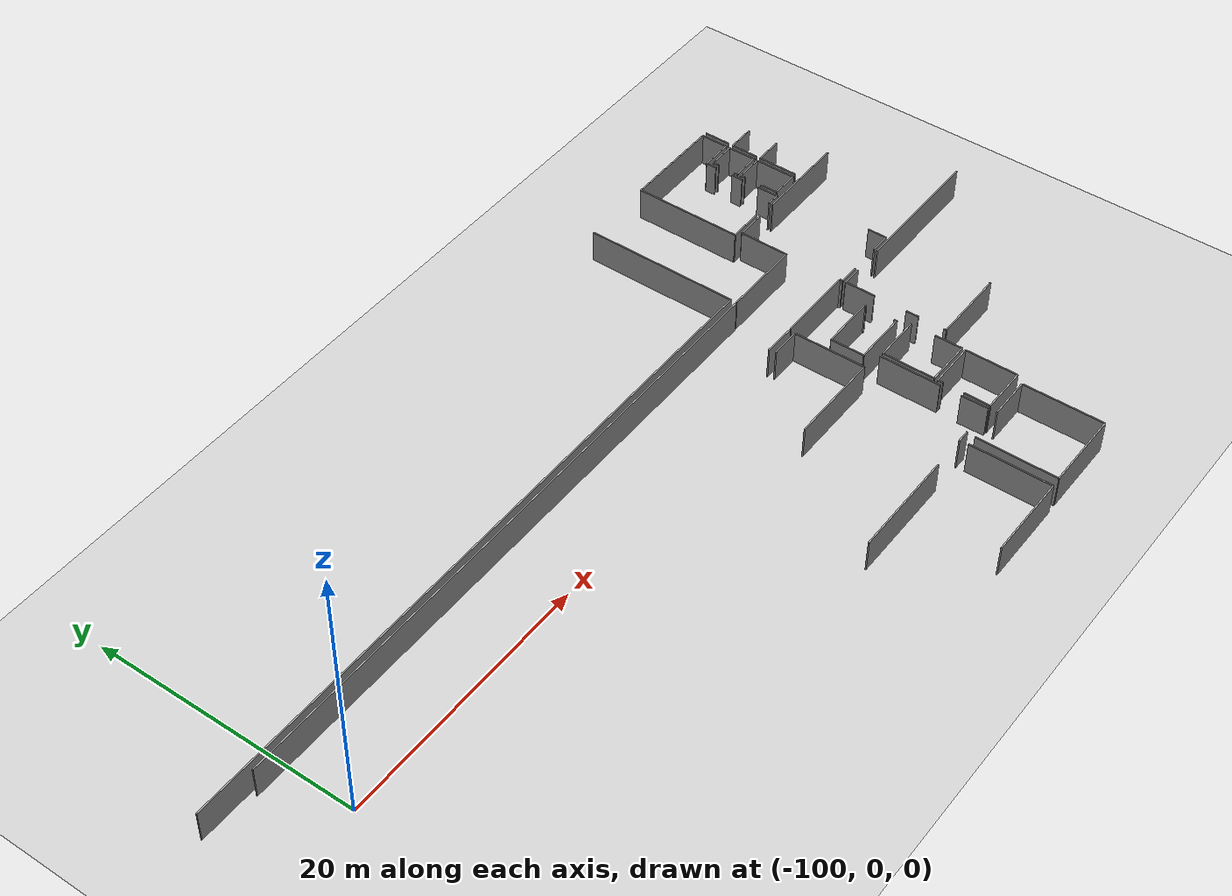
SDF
<sdf version="1.6">
 <world name="default">
  <model name="ground_plane">
   <static>1</static>
   <link name="link">
    <collision name="collision">
     <geometry><plane><normal>0 0 1</normal><size>100 100</size></plane></geometry>
     <surface><friction><ode><mu>100</mu><mu2>50</mu2></ode></friction></surface>
    </collision>
    <visual name="visual">
     <cast_shadows>0</cast_shadows>
     <geometry><plane><normal>0 0 1</normal><size>100 100</size></plane></geometry>
     <material>
      <script><uri>file://media/materials/scripts/gazebo.material</uri><name>Gazebo/Grey</name></script>
     </material>
    </visual>
   </link>
  </model>
  <model name="50037764_PLAN1">
   <static>1</static>
   <link name="Wall_7">
    <collision name="Wall_7_Collision">
     <geometry><box><size>52.3181147999 0.1 2.5</size></box></geometry>
     <pose>26.1590574 0 1.25 0 0 0</pose>
    </collision>
    <visual name="Wall_7_Visual">
     <pose>26.1590574 0 1.25 0 0 0</pose>
     <geometry><box><size>52.3181147999 0.1 2.5</size></box></geometry>
     <material>
      <script><uri>file://media/materials/scripts/gazebo.material</uri><name>Gazebo/Grey</name></script>
      <ambient>1 1 1 1</ambient>
     </material>
    </visual>
    <pose>80.802531903 -15.2174996187 0 0 0 3.14159265359</pose>
   </link>
   <link name="Wall_12">
    <collision name="Wall_12_Collision">
     <geometry><box><size>11.5403012483 0.1 2.5</size></box></geometry>
     <pose>5.77015062417 0 1.25 0 0 0</pose>
    </collision>
    <visual name="Wall_12_Visual">
     <pose>5.77015062417 0 1.25 0 0 0</pose>
     <geometry><box><size>11.5403012483 0.1 2.5</size></box></geometry>
     <material>
      <script><uri>file://media/materials/scripts/gazebo.material</uri><name>Gazebo/Grey</name></script>
      <ambient>1 1 1 1</ambient>
     </material>
    </visual>
    <pose>80.7877878896 -3.67720778891 0 0 0 -1.56951871565</pose>
   </link>
   <link name="Wall_103">
    <collision name="Wall_103_Collision">
     <geometry><box><size>48.118867253 0.1 2.5</size></box></geometry>
     <pose>24.0594336265 0 1.25 0 0 0</pose>
    </collision>
    <visual name="Wall_103_Visual">
     <pose>24.0594336265 0 1.25 0 0 0</pose>
     <geometry><box><size>48.118867253 0.1 2.5</size></box></geometry>
     <material>
      <script><uri>file://media/materials/scripts/gazebo.material</uri><name>Gazebo/Grey</name></script>
      <ambient>1 1 1 1</ambient>
     </material>
    </visual>
    <pose>80.6886471097 -15.6869439219 0 0 0 3.14159265359</pose>
   </link>
   <link name="Wall_114">
    <collision name="Wall_114_Collision">
     <geometry><box><size>2.43379115076 0.1 2.5</size></box></geometry>
     <pose>1.21689557538 0 1.25 0 0 0</pose>
    </collision>
    <visual name="Wall_114_Visual">
     <pose>1.21689557538 0 1.25 0 0 0</pose>
     <geometry><box><size>2.43379115076 0.1 2.5</size></box></geometry>
     <material>
      <script><uri>file://media/materials/scripts/gazebo.material</uri><name>Gazebo/Grey</name></script>
      <ambient>1 1 1 1</ambient>
     </material>
    </visual>
    <pose>78.2553764808 -19.9963139966 0 0 0 -0.0206823826757</pose>
   </link>
   <link name="Wall_115">
    <collision name="Wall_115_Collision">
     <geometry><box><size>0.989119934923 0.1 2.5</size></box></geometry>
     <pose>0.494559967461 0 1.25 0 0 0</pose>
    </collision>
    <visual name="Wall_115_Visual">
     <pose>0.494559967461 0 1.25 0 0 0</pose>
     <geometry><box><size>0.989119934923 0.1 2.5</size></box></geometry>
     <material>
      <script><uri>file://media/materials/scripts/gazebo.material</uri><name>Gazebo/Grey</name></script>
      <ambient>1 1 1 1</ambient>
     </material>
    </visual>
    <pose>79.5414103411 -34.3661345264 0 0 0 3.14159265359</pose>
   </link>
   <link name="Wall_116">
    <collision name="Wall_116_Collision">
     <geometry><box><size>8.24037826021 0.1 2.5</size></box></geometry>
     <pose>4.1201891301 0 1.25 0 0 0</pose>
    </collision>
    <visual name="Wall_116_Visual">
     <pose>4.1201891301 0 1.25 0 0 0</pose>
     <geometry><box><size>8.24037826021 0.1 2.5</size></box></geometry>
     <material>
      <script><uri>file://media/materials/scripts/gazebo.material</uri><name>Gazebo/Grey</name></script>
      <ambient>1 1 1 1</ambient>
     </material>
    </visual>
    <pose>75.9997966343 -34.3661345264 0 0 0 3.14159265359</pose>
   </link>
   <link name="Wall_130">
    <collision name="Wall_130_Collision">
     <geometry><box><size>4.60445370888 0.1 2.5</size></box></geometry>
     <pose>2.30222685444 0 1.25 0 0 0</pose>
    </collision>
    <visual name="Wall_130_Visual">
     <pose>2.30222685444 0 1.25 0 0 0</pose>
     <geometry><box><size>4.60445370888 0.1 2.5</size></box></geometry>
     <material>
      <script><uri>file://media/materials/scripts/gazebo.material</uri><name>Gazebo/Grey</name></script>
      <ambient>1 1 1 1</ambient>
     </material>
    </visual>
    <pose>82.1686410087 -26.1923585337 0 0 0 -1.57079632679</pose>
   </link>
   <link name="Wall_131">
    <collision name="Wall_131_Collision">
     <geometry><box><size>1.99791415344 0.1 2.5</size></box></geometry>
     <pose>0.998957076719 0 1.25 0 0 0</pose>
    </collision>
    <visual name="Wall_131_Visual">
     <pose>0.998957076719 0 1.25 0 0 0</pose>
     <geometry><box><size>1.99791415344 0.1 2.5</size></box></geometry>
     <material>
      <script><uri>file://media/materials/scripts/gazebo.material</uri><name>Gazebo/Grey</name></script>
      <ambient>1 1 1 1</ambient>
     </material>
    </visual>
    <pose>82.1686410087 -32.368829122 0 0 0 -1.54610998474</pose>
   </link>
   <link name="Wall_146">
    <collision name="Wall_146_Collision">
     <geometry><box><size>6.47109664955 0.1 2.5</size></box></geometry>
     <pose>3.23554832478 0 1.25 0 0 0</pose>
    </collision>
    <visual name="Wall_146_Visual">
     <pose>3.23554832478 0 1.25 0 0 0</pose>
     <geometry><box><size>6.47109664955 0.1 2.5</size></box></geometry>
     <material>
      <script><uri>file://media/materials/scripts/gazebo.material</uri><name>Gazebo/Grey</name></script>
      <ambient>1 1 1 1</ambient>
     </material>
    </visual>
    <pose>78.6918501195 -41.0899130612 0 0 0 3.14159265359</pose>
   </link>
   <link name="Wall_149">
    <collision name="Wall_149_Collision">
     <geometry><box><size>6.10890438347 0.1 2.5</size></box></geometry>
     <pose>3.05445219173 0 1.25 0 0 0</pose>
    </collision>
    <visual name="Wall_149_Visual">
     <pose>3.05445219173 0 1.25 0 0 0</pose>
     <geometry><box><size>6.10890438347 0.1 2.5</size></box></geometry>
     <material>
      <script><uri>file://media/materials/scripts/gazebo.material</uri><name>Gazebo/Grey</name></script>
      <ambient>1 1 1 1</ambient>
     </material>
    </visual>
    <pose>78.6664294067 -34.981061569 0 0 0 -1.56663505915</pose>
   </link>
   <link name="Wall_150">
    <collision name="Wall_150_Collision">
     <geometry><box><size>6.04352026031 0.1 2.5</size></box></geometry>
     <pose>3.02176013015 0 1.25 0 0 0</pose>
    </collision>
    <visual name="Wall_150_Visual">
     <pose>3.02176013015 0 1.25 0 0 0</pose>
     <geometry><box><size>6.04352026031 0.1 2.5</size></box></geometry>
     <material>
      <script><uri>file://media/materials/scripts/gazebo.material</uri><name>Gazebo/Grey</name></script>
      <ambient>1 1 1 1</ambient>
     </material>
    </visual>
    <pose>85.4969749352 -41.0596624129 0 0 0 3.14159265359</pose>
   </link>
   <link name="Wall_151">
    <collision name="Wall_151_Collision">
     <geometry><box><size>6.05953530937 0.1 2.5</size></box></geometry>
     <pose>3.02976765469 0 1.25 0 0 0</pose>
    </collision>
    <visual name="Wall_151_Visual">
     <pose>3.02976765469 0 1.25 0 0 0</pose>
     <geometry><box><size>6.05953530937 0.1 2.5</size></box></geometry>
     <material>
      <script><uri>file://media/materials/scripts/gazebo.material</uri><name>Gazebo/Grey</name></script>
      <ambient>1 1 1 1</ambient>
     </material>
    </visual>
    <pose>79.4534546749 -41.0596624129 0 0 0 1.57079632679</pose>
   </link>
   <link name="Wall_152">
    <collision name="Wall_152_Collision">
     <geometry><box><size>3.23427728914 0.1 2.5</size></box></geometry>
     <pose>1.61713864457 0 1.25 0 0 0</pose>
    </collision>
    <visual name="Wall_152_Visual">
     <pose>1.61713864457 0 1.25 0 0 0</pose>
     <geometry><box><size>3.23427728914 0.1 2.5</size></box></geometry>
     <material>
      <script><uri>file://media/materials/scripts/gazebo.material</uri><name>Gazebo/Grey</name></script>
      <ambient>1 1 1 1</ambient>
     </material>
    </visual>
    <pose>82.226854441 -35.0001271036 0 0 0 0.0</pose>
   </link>
   <link name="Wall_153">
    <collision name="Wall_153_Collision">
     <geometry><box><size>6.05964131784 0.1 2.5</size></box></geometry>
     <pose>3.02982065892 0 1.25 0 0 0</pose>
    </collision>
    <visual name="Wall_153_Visual">
     <pose>3.02982065892 0 1.25 0 0 0</pose>
     <geometry><box><size>6.05964131784 0.1 2.5</size></box></geometry>
     <material>
      <script><uri>file://media/materials/scripts/gazebo.material</uri><name>Gazebo/Grey</name></script>
      <ambient>1 1 1 1</ambient>
     </material>
    </visual>
    <pose>85.4611317301 -35.0001271036 0 0 0 -1.56488122189</pose>
   </link>
   <link name="Wall_154">
    <collision name="Wall_154_Collision">
     <geometry><box><size>3.55406985612 0.1 2.5</size></box></geometry>
     <pose>1.77703492806 0 1.25 0 0 0</pose>
    </collision>
    <visual name="Wall_154_Visual">
     <pose>1.77703492806 0 1.25 0 0 0</pose>
     <geometry><box><size>3.55406985612 0.1 2.5</size></box></geometry>
     <material>
      <script><uri>file://media/materials/scripts/gazebo.material</uri><name>Gazebo/Grey</name></script>
      <ambient>1 1 1 1</ambient>
     </material>
    </visual>
    <pose>86.0297930754 -34.3569830698 0 0 0 3.14159265359</pose>
   </link>
   <link name="Wall_155">
    <collision name="Wall_155_Collision">
     <geometry><box><size>1.96629213483 0.1 2.5</size></box></geometry>
     <pose>0.983146067416 0 1.25 0 0 0</pose>
    </collision>
    <visual name="Wall_155_Visual">
     <pose>0.983146067416 0 1.25 0 0 0</pose>
     <geometry><box><size>1.96629213483 0.1 2.5</size></box></geometry>
     <material>
      <script><uri>file://media/materials/scripts/gazebo.material</uri><name>Gazebo/Grey</name></script>
      <ambient>1 1 1 1</ambient>
     </material>
    </visual>
    <pose>82.4757232193 -34.3569830698 0 0 0 1.57079632679</pose>
   </link>
   <link name="Wall_156">
    <collision name="Wall_156_Collision">
     <geometry><box><size>0.406985611877 0.1 2.5</size></box></geometry>
     <pose>0.203492805938 0 1.25 0 0 0</pose>
    </collision>
    <visual name="Wall_156_Visual">
     <pose>0.203492805938 0 1.25 0 0 0</pose>
     <geometry><box><size>0.406985611877 0.1 2.5</size></box></geometry>
     <material>
      <script><uri>file://media/materials/scripts/gazebo.material</uri><name>Gazebo/Grey</name></script>
      <ambient>1 1 1 1</ambient>
     </material>
    </visual>
    <pose>82.4757232193 -30.827317098 0 0 0 1.57079632679</pose>
   </link>
   <link name="Wall_157">
    <collision name="Wall_157_Collision">
     <geometry><box><size>3.54974833494 0.1 2.5</size></box></geometry>
     <pose>1.77487416747 0 1.25 0 0 0</pose>
    </collision>
    <visual name="Wall_157_Visual">
     <pose>1.77487416747 0 1.25 0 0 0</pose>
     <geometry><box><size>3.54974833494 0.1 2.5</size></box></geometry>
     <material>
      <script><uri>file://media/materials/scripts/gazebo.material</uri><name>Gazebo/Grey</name></script>
      <ambient>1 1 1 1</ambient>
     </material>
    </visual>
    <pose>82.4757232193 -30.4203314861 0 0 0 0.0</pose>
   </link>
   <link name="Wall_158">
    <collision name="Wall_158_Collision">
     <geometry><box><size>3.93665395572 0.1 2.5</size></box></geometry>
     <pose>1.96832697786 0 1.25 0 0 0</pose>
    </collision>
    <visual name="Wall_158_Visual">
     <pose>1.96832697786 0 1.25 0 0 0</pose>
     <geometry><box><size>3.93665395572 0.1 2.5</size></box></geometry>
     <material>
      <script><uri>file://media/materials/scripts/gazebo.material</uri><name>Gazebo/Grey</name></script>
      <ambient>1 1 1 1</ambient>
     </material>
    </visual>
    <pose>86.0254715542 -30.4203314861 0 0 0 -1.56969856151</pose>
   </link>
   <link name="Wall_159">
    <collision name="Wall_159_Collision">
     <geometry><box><size>7.15338858102 0.1 2.5</size></box></geometry>
     <pose>3.57669429051 0 1.25 0 0 0</pose>
    </collision>
    <visual name="Wall_159_Visual">
     <pose>3.57669429051 0 1.25 0 0 0</pose>
     <geometry><box><size>7.15338858102 0.1 2.5</size></box></geometry>
     <material>
      <script><uri>file://media/materials/scripts/gazebo.material</uri><name>Gazebo/Grey</name></script>
      <ambient>1 1 1 1</ambient>
     </material>
    </visual>
    <pose>80.6759367533 -25.9109512431 0 0 0 3.14159265359</pose>
   </link>
   <link name="Wall_162">
    <collision name="Wall_162_Collision">
     <geometry><box><size>2.26727337435 0.1 2.5</size></box></geometry>
     <pose>1.13363668717 0 1.25 0 0 0</pose>
    </collision>
    <visual name="Wall_162_Visual">
     <pose>1.13363668717 0 1.25 0 0 0</pose>
     <geometry><box><size>2.26727337435 0.1 2.5</size></box></geometry>
     <material>
      <script><uri>file://media/materials/scripts/gazebo.material</uri><name>Gazebo/Grey</name></script>
      <ambient>1 1 1 1</ambient>
     </material>
    </visual>
    <pose>78.3606182317 -20.4932889318 0 0 0 0.0</pose>
   </link>
   <link name="Wall_163">
    <collision name="Wall_163_Collision">
     <geometry><box><size>5.41787534509 0.1 2.5</size></box></geometry>
     <pose>2.70893767254 0 1.25 0 0 0</pose>
    </collision>
    <visual name="Wall_163_Visual">
     <pose>2.70893767254 0 1.25 0 0 0</pose>
     <geometry><box><size>5.41787534509 0.1 2.5</size></box></geometry>
     <material>
      <script><uri>file://media/materials/scripts/gazebo.material</uri><name>Gazebo/Grey</name></script>
      <ambient>1 1 1 1</ambient>
     </material>
    </visual>
    <pose>80.6278916061 -20.4932889318 0 0 0 -1.56192831602</pose>
   </link>
   <link name="Wall_167">
    <collision name="Wall_167_Collision">
     <geometry><box><size>1.43347399461 0.1 2.5</size></box></geometry>
     <pose>0.716736997305 0 1.25 0 0 0</pose>
    </collision>
    <visual name="Wall_167_Visual">
     <pose>0.716736997305 0 1.25 0 0 0</pose>
     <geometry><box><size>1.43347399461 0.1 2.5</size></box></geometry>
     <material>
      <script><uri>file://media/materials/scripts/gazebo.material</uri><name>Gazebo/Grey</name></script>
      <ambient>1 1 1 1</ambient>
     </material>
    </visual>
    <pose>92.485128883 -18.8017947023 0 0 0 -1.57079632679</pose>
   </link>
   <link name="Wall_168">
    <collision name="Wall_168_Collision">
     <geometry><box><size>1.56718694392 0.1 2.5</size></box></geometry>
     <pose>0.783593471961 0 1.25 0 0 0</pose>
    </collision>
    <visual name="Wall_168_Visual">
     <pose>0.783593471961 0 1.25 0 0 0</pose>
     <geometry><box><size>1.56718694392 0.1 2.5</size></box></geometry>
     <material>
      <script><uri>file://media/materials/scripts/gazebo.material</uri><name>Gazebo/Grey</name></script>
      <ambient>1 1 1 1</ambient>
     </material>
    </visual>
    <pose>92.485128883 -20.2352686969 0 0 0 3.14159265359</pose>
   </link>
   <link name="Wall_169">
    <collision name="Wall_169_Collision">
     <geometry><box><size>1.61141898419 0.1 2.5</size></box></geometry>
     <pose>0.805709492094 0 1.25 0 0 0</pose>
    </collision>
    <visual name="Wall_169_Visual">
     <pose>0.805709492094 0 1.25 0 0 0</pose>
     <geometry><box><size>1.61141898419 0.1 2.5</size></box></geometry>
     <material>
      <script><uri>file://media/materials/scripts/gazebo.material</uri><name>Gazebo/Grey</name></script>
      <ambient>1 1 1 1</ambient>
     </material>
    </visual>
    <pose>88.5233107936 -20.2352686969 0 0 0 3.14159265359</pose>
   </link>
   <link name="Wall_170">
    <collision name="Wall_170_Collision">
     <geometry><box><size>0.215821851645 0.1 2.5</size></box></geometry>
     <pose>0.107910925822 0 1.25 0 0 0</pose>
    </collision>
    <visual name="Wall_170_Visual">
     <pose>0.107910925822 0 1.25 0 0 0</pose>
     <geometry><box><size>0.215821851645 0.1 2.5</size></box></geometry>
     <material>
      <script><uri>file://media/materials/scripts/gazebo.material</uri><name>Gazebo/Grey</name></script>
      <ambient>1 1 1 1</ambient>
     </material>
    </visual>
    <pose>86.9118918094 -20.2352686969 0 0 0 1.57079632679</pose>
   </link>
   <link name="Wall_171">
    <collision name="Wall_171_Collision">
     <geometry><box><size>6.10732624943 0.1 2.5</size></box></geometry>
     <pose>3.05366312471 0 1.25 0 0 0</pose>
    </collision>
    <visual name="Wall_171_Visual">
     <pose>3.05366312471 0 1.25 0 0 0</pose>
     <geometry><box><size>6.10732624943 0.1 2.5</size></box></geometry>
     <material>
      <script><uri>file://media/materials/scripts/gazebo.material</uri><name>Gazebo/Grey</name></script>
      <ambient>1 1 1 1</ambient>
     </material>
    </visual>
    <pose>86.9118918094 -20.0194468453 0 0 0 3.14159265359</pose>
   </link>
   <link name="Wall_172">
    <collision name="Wall_172_Collision">
     <geometry><box><size>6.09105699324 0.1 2.5</size></box></geometry>
     <pose>3.04552849662 0 1.25 0 0 0</pose>
    </collision>
    <visual name="Wall_172_Visual">
     <pose>3.04552849662 0 1.25 0 0 0</pose>
     <geometry><box><size>6.09105699324 0.1 2.5</size></box></geometry>
     <material>
      <script><uri>file://media/materials/scripts/gazebo.material</uri><name>Gazebo/Grey</name></script>
      <ambient>1 1 1 1</ambient>
     </material>
    </visual>
    <pose>80.80456556 -15.6702425136 0 0 0 0.0</pose>
   </link>
   <link name="Wall_173">
    <collision name="Wall_173_Collision">
     <geometry><box><size>3.69390919721 0.1 2.5</size></box></geometry>
     <pose>1.84695459861 0 1.25 0 0 0</pose>
    </collision>
    <visual name="Wall_173_Visual">
     <pose>1.84695459861 0 1.25 0 0 0</pose>
     <geometry><box><size>3.69390919721 0.1 2.5</size></box></geometry>
     <material>
      <script><uri>file://media/materials/scripts/gazebo.material</uri><name>Gazebo/Grey</name></script>
      <ambient>1 1 1 1</ambient>
     </material>
    </visual>
    <pose>86.8956225533 -15.6702425136 0 0 0 1.57079632679</pose>
   </link>
   <link name="Wall_174">
    <collision name="Wall_174_Collision">
     <geometry><box><size>2.19126544308 0.1 2.5</size></box></geometry>
     <pose>1.09563272154 0 1.25 0 0 0</pose>
    </collision>
    <visual name="Wall_174_Visual">
     <pose>1.09563272154 0 1.25 0 0 0</pose>
     <geometry><box><size>2.19126544308 0.1 2.5</size></box></geometry>
     <material>
      <script><uri>file://media/materials/scripts/gazebo.material</uri><name>Gazebo/Grey</name></script>
      <ambient>1 1 1 1</ambient>
     </material>
    </visual>
    <pose>86.8956225533 -11.9763333164 0 0 0 0.0</pose>
   </link>
   <link name="Wall_175">
    <collision name="Wall_175_Collision">
     <geometry><box><size>7.17652142966 0.1 2.5</size></box></geometry>
     <pose>3.58826071483 0 1.25 0 0 0</pose>
    </collision>
    <visual name="Wall_175_Visual">
     <pose>3.58826071483 0 1.25 0 0 0</pose>
     <geometry><box><size>7.17652142966 0.1 2.5</size></box></geometry>
     <material>
      <script><uri>file://media/materials/scripts/gazebo.material</uri><name>Gazebo/Grey</name></script>
      <ambient>1 1 1 1</ambient>
     </material>
    </visual>
    <pose>90.6741573034 -11.9763333164 0 0 0 0.0</pose>
   </link>
   <link name="Wall_178">
    <collision name="Wall_178_Collision">
     <geometry><box><size>0.989119934923 0.1 2.5</size></box></geometry>
     <pose>0.494559967461 0 1.25 0 0 0</pose>
    </collision>
    <visual name="Wall_178_Visual">
     <pose>0.494559967461 0 1.25 0 0 0</pose>
     <geometry><box><size>0.989119934923 0.1 2.5</size></box></geometry>
     <material>
      <script><uri>file://media/materials/scripts/gazebo.material</uri><name>Gazebo/Grey</name></script>
      <ambient>1 1 1 1</ambient>
     </material>
    </visual>
    <pose>91.68259698 -11.7032894402 0 0 0 3.14159265359</pose>
   </link>
   <link name="Wall_179">
    <collision name="Wall_179_Collision">
     <geometry><box><size>2.6485840663 0.1 2.5</size></box></geometry>
     <pose>1.32429203315 0 1.25 0 0 0</pose>
    </collision>
    <visual name="Wall_179_Visual">
     <pose>1.32429203315 0 1.25 0 0 0</pose>
     <geometry><box><size>2.6485840663 0.1 2.5</size></box></geometry>
     <material>
      <script><uri>file://media/materials/scripts/gazebo.material</uri><name>Gazebo/Grey</name></script>
      <ambient>1 1 1 1</ambient>
     </material>
    </visual>
    <pose>89.0917179318 -11.7032894402 0 0 0 3.14159265359</pose>
   </link>
   <link name="Wall_180">
    <collision name="Wall_180_Collision">
     <geometry><box><size>8.05157862626 0.1 2.5</size></box></geometry>
     <pose>4.02578931313 0 1.25 0 0 0</pose>
    </collision>
    <visual name="Wall_180_Visual">
     <pose>4.02578931313 0 1.25 0 0 0</pose>
     <geometry><box><size>8.05157862626 0.1 2.5</size></box></geometry>
     <material>
      <script><uri>file://media/materials/scripts/gazebo.material</uri><name>Gazebo/Grey</name></script>
      <ambient>1 1 1 1</ambient>
     </material>
    </visual>
    <pose>86.4431338655 -11.7032894402 0 0 0 1.57079632679</pose>
   </link>
   <link name="Wall_181">
    <collision name="Wall_181_Collision">
     <geometry><box><size>7.64095785246 0.1 2.5</size></box></geometry>
     <pose>3.82047892623 0 1.25 0 0 0</pose>
    </collision>
    <visual name="Wall_181_Visual">
     <pose>3.82047892623 0 1.25 0 0 0</pose>
     <geometry><box><size>7.64095785246 0.1 2.5</size></box></geometry>
     <material>
      <script><uri>file://media/materials/scripts/gazebo.material</uri><name>Gazebo/Grey</name></script>
      <ambient>1 1 1 1</ambient>
     </material>
    </visual>
    <pose>86.4431338655 -3.65171081397 0 0 0 0.0</pose>
   </link>
   <link name="Wall_182">
    <collision name="Wall_182_Collision">
     <geometry><box><size>2.03508058366 0.1 2.5</size></box></geometry>
     <pose>1.01754029183 0 1.25 0 0 0</pose>
    </collision>
    <visual name="Wall_182_Visual">
     <pose>1.01754029183 0 1.25 0 0 0</pose>
     <geometry><box><size>2.03508058366 0.1 2.5</size></box></geometry>
     <material>
      <script><uri>file://media/materials/scripts/gazebo.material</uri><name>Gazebo/Grey</name></script>
      <ambient>1 1 1 1</ambient>
     </material>
    </visual>
    <pose>94.0840917179 -3.65171081397 0 0 0 -1.57079632679</pose>
   </link>
   <link name="Wall_183">
    <collision name="Wall_183_Collision">
     <geometry><box><size>2.40988357314 0.1 2.5</size></box></geometry>
     <pose>1.20494178657 0 1.25 0 0 0</pose>
    </collision>
    <visual name="Wall_183_Visual">
     <pose>1.20494178657 0 1.25 0 0 0</pose>
     <geometry><box><size>2.40988357314 0.1 2.5</size></box></geometry>
     <material>
      <script><uri>file://media/materials/scripts/gazebo.material</uri><name>Gazebo/Grey</name></script>
      <ambient>1 1 1 1</ambient>
     </material>
    </visual>
    <pose>94.0840917179 -5.68679139763 0 0 0 3.14159265359</pose>
   </link>
   <link name="Wall_184">
    <collision name="Wall_184_Collision">
     <geometry><box><size>0.772840510448 0.1 2.5</size></box></geometry>
     <pose>0.386420255224 0 1.25 0 0 0</pose>
    </collision>
    <visual name="Wall_184_Visual">
     <pose>0.386420255224 0 1.25 0 0 0</pose>
     <geometry><box><size>0.772840510448 0.1 2.5</size></box></geometry>
     <material>
      <script><uri>file://media/materials/scripts/gazebo.material</uri><name>Gazebo/Grey</name></script>
      <ambient>1 1 1 1</ambient>
     </material>
    </visual>
    <pose>91.6742081448 -5.68679139763 0 0 0 -1.57079632679</pose>
   </link>
   <link name="Wall_185">
    <collision name="Wall_185_Collision">
     <geometry><box><size>0.850526208755 0.1 2.5</size></box></geometry>
     <pose>0.425263104377 0 1.25 0 0 0</pose>
    </collision>
    <visual name="Wall_185_Visual">
     <pose>0.425263104377 0 1.25 0 0 0</pose>
     <geometry><box><size>0.850526208755 0.1 2.5</size></box></geometry>
     <material>
      <script><uri>file://media/materials/scripts/gazebo.material</uri><name>Gazebo/Grey</name></script>
      <ambient>1 1 1 1</ambient>
     </material>
    </visual>
    <pose>91.6742081448 -7.87859067568 0 0 0 -1.57079632679</pose>
   </link>
   <link name="Wall_186">
    <collision name="Wall_186_Collision">
     <geometry><box><size>1.59555309156 0.1 2.5</size></box></geometry>
     <pose>0.797776545779 0 1.25 0 0 0</pose>
    </collision>
    <visual name="Wall_186_Visual">
     <pose>0.797776545779 0 1.25 0 0 0</pose>
     <geometry><box><size>1.59555309156 0.1 2.5</size></box></geometry>
     <material>
      <script><uri>file://media/materials/scripts/gazebo.material</uri><name>Gazebo/Grey</name></script>
      <ambient>1 1 1 1</ambient>
     </material>
    </visual>
    <pose>91.6742081448 -10.1077584015 0 0 0 -1.56553866792</pose>
   </link>
   <link name="Wall_193">
    <collision name="Wall_193_Collision">
     <geometry><box><size>1.99733082516 0.1 2.5</size></box></geometry>
     <pose>0.998665412578 0 1.25 0 0 0</pose>
    </collision>
    <visual name="Wall_193_Visual">
     <pose>0.998665412578 0 1.25 0 0 0</pose>
     <geometry><box><size>1.99733082516 0.1 2.5</size></box></geometry>
     <material>
      <script><uri>file://media/materials/scripts/gazebo.material</uri><name>Gazebo/Grey</name></script>
      <ambient>1 1 1 1</ambient>
     </material>
    </visual>
    <pose>94.4539630891 -5.67100513498 0 0 0 1.57079632679</pose>
   </link>
   <link name="Wall_197">
    <collision name="Wall_197_Collision">
     <geometry><box><size>2.06538207331 0.1 2.5</size></box></geometry>
     <pose>1.03269103666 0 1.25 0 0 0</pose>
    </collision>
    <visual name="Wall_197_Visual">
     <pose>1.03269103666 0 1.25 0 0 0</pose>
     <geometry><box><size>2.06538207331 0.1 2.5</size></box></geometry>
     <material>
      <script><uri>file://media/materials/scripts/gazebo.material</uri><name>Gazebo/Grey</name></script>
      <ambient>1 1 1 1</ambient>
     </material>
    </visual>
    <pose>94.4290507906 -8.09682749504 0 0 0 1.57079632679</pose>
   </link>
   <link name="Wall_198">
    <collision name="Wall_198_Collision">
     <geometry><box><size>2.10915654075 0.1 2.5</size></box></geometry>
     <pose>1.05457827037 0 1.25 0 0 0</pose>
    </collision>
    <visual name="Wall_198_Visual">
     <pose>1.05457827037 0 1.25 0 0 0</pose>
     <geometry><box><size>2.10915654075 0.1 2.5</size></box></geometry>
     <material>
      <script><uri>file://media/materials/scripts/gazebo.material</uri><name>Gazebo/Grey</name></script>
      <ambient>1 1 1 1</ambient>
     </material>
    </visual>
    <pose>94.4290507906 -6.03144542173 0 0 0 0.0</pose>
   </link>
   <link name="Wall_202">
    <collision name="Wall_202_Collision">
     <geometry><box><size>3.01654888403 0.1 2.5</size></box></geometry>
     <pose>1.50827444202 0 1.25 0 0 0</pose>
    </collision>
    <visual name="Wall_202_Visual">
     <pose>1.50827444202 0 1.25 0 0 0</pose>
     <geometry><box><size>3.01654888403 0.1 2.5</size></box></geometry>
     <material>
      <script><uri>file://media/materials/scripts/gazebo.material</uri><name>Gazebo/Grey</name></script>
      <ambient>1 1 1 1</ambient>
     </material>
    </visual>
    <pose>94.4331181046 -11.4373633637 0 0 0 1.57079632679</pose>
   </link>
   <link name="Wall_203">
    <collision name="Wall_203_Collision">
     <geometry><box><size>2.11068178352 0.1 2.5</size></box></geometry>
     <pose>1.05534089176 0 1.25 0 0 0</pose>
    </collision>
    <visual name="Wall_203_Visual">
     <pose>1.05534089176 0 1.25 0 0 0</pose>
     <geometry><box><size>2.11068178352 0.1 2.5</size></box></geometry>
     <material>
      <script><uri>file://media/materials/scripts/gazebo.material</uri><name>Gazebo/Grey</name></script>
      <ambient>1 1 1 1</ambient>
     </material>
    </visual>
    <pose>94.4331181046 -8.42081447964 0 0 0 0.0</pose>
   </link>
   <link name="Wall_206">
    <collision name="Wall_206_Collision">
     <geometry><box><size>2.11983324012 0.1 2.5</size></box></geometry>
     <pose>1.05991662006 0 1.25 0 0 0</pose>
    </collision>
    <visual name="Wall_206_Visual">
     <pose>1.05991662006 0 1.25 0 0 0</pose>
     <geometry><box><size>2.11983324012 0.1 2.5</size></box></geometry>
     <material>
      <script><uri>file://media/materials/scripts/gazebo.material</uri><name>Gazebo/Grey</name></script>
      <ambient>1 1 1 1</ambient>
     </material>
    </visual>
    <pose>94.1097666379 -11.4527428949 0 0 0 3.14159265359</pose>
   </link>
   <link name="Wall_207">
    <collision name="Wall_207_Collision">
     <geometry><box><size>1.31173420103 0.1 2.5</size></box></geometry>
     <pose>0.655867100513 0 1.25 0 0 0</pose>
    </collision>
    <visual name="Wall_207_Visual">
     <pose>0.655867100513 0 1.25 0 0 0</pose>
     <geometry><box><size>1.31173420103 0.1 2.5</size></box></geometry>
     <material>
      <script><uri>file://media/materials/scripts/gazebo.material</uri><name>Gazebo/Grey</name></script>
      <ambient>1 1 1 1</ambient>
     </material>
    </visual>
    <pose>91.9899333977 -11.4527428949 0 0 0 1.57079632679</pose>
   </link>
   <link name="Wall_208">
    <collision name="Wall_208_Collision">
     <geometry><box><size>0.365651532869 0.1 2.5</size></box></geometry>
     <pose>0.182825766434 0 1.25 0 0 0</pose>
    </collision>
    <visual name="Wall_208_Visual">
     <pose>0.182825766434 0 1.25 0 0 0</pose>
     <geometry><box><size>0.365651532869 0.1 2.5</size></box></geometry>
     <material>
      <script><uri>file://media/materials/scripts/gazebo.material</uri><name>Gazebo/Grey</name></script>
      <ambient>1 1 1 1</ambient>
     </material>
    </visual>
    <pose>91.9899333977 -8.76152829325 0 0 0 1.57079632679</pose>
   </link>
   <link name="Wall_209">
    <collision name="Wall_209_Collision">
     <geometry><box><size>2.11907061874 0.1 2.5</size></box></geometry>
     <pose>1.05953530937 0 1.25 0 0 0</pose>
    </collision>
    <visual name="Wall_209_Visual">
     <pose>1.05953530937 0 1.25 0 0 0</pose>
     <geometry><box><size>2.11907061874 0.1 2.5</size></box></geometry>
     <material>
      <script><uri>file://media/materials/scripts/gazebo.material</uri><name>Gazebo/Grey</name></script>
      <ambient>1 1 1 1</ambient>
     </material>
    </visual>
    <pose>91.9899333977 -8.39587676038 0 0 0 0.0</pose>
   </link>
   <link name="Wall_210">
    <collision name="Wall_210_Collision">
     <geometry><box><size>3.05686622966 0.1 2.5</size></box></geometry>
     <pose>1.52843311483 0 1.25 0 0 0</pose>
    </collision>
    <visual name="Wall_210_Visual">
     <pose>1.52843311483 0 1.25 0 0 0</pose>
     <geometry><box><size>3.05686622966 0.1 2.5</size></box></geometry>
     <material>
      <script><uri>file://media/materials/scripts/gazebo.material</uri><name>Gazebo/Grey</name></script>
      <ambient>1 1 1 1</ambient>
     </material>
    </visual>
    <pose>94.1090040165 -8.39587676038 0 0 0 -1.57054684863</pose>
   </link>
   <link name="Wall_211">
    <collision name="Wall_211_Collision">
     <geometry><box><size>2.12110427576 0.1 2.5</size></box></geometry>
     <pose>1.06055213788 0 1.25 0 0 0</pose>
    </collision>
    <visual name="Wall_211_Visual">
     <pose>1.06055213788 0 1.25 0 0 0</pose>
     <geometry><box><size>2.12110427576 0.1 2.5</size></box></geometry>
     <material>
      <script><uri>file://media/materials/scripts/gazebo.material</uri><name>Gazebo/Grey</name></script>
      <ambient>1 1 1 1</ambient>
     </material>
    </visual>
    <pose>94.1194265087 -8.10793634654 0 0 0 3.14159265359</pose>
   </link>
   <link name="Wall_212">
    <collision name="Wall_212_Collision">
     <geometry><box><size>0.227286593116 0.1 2.5</size></box></geometry>
     <pose>0.113643296558 0 1.25 0 0 0</pose>
    </collision>
    <visual name="Wall_212_Visual">
     <pose>0.113643296558 0 1.25 0 0 0</pose>
     <geometry><box><size>0.227286593116 0.1 2.5</size></box></geometry>
     <material>
      <script><uri>file://media/materials/scripts/gazebo.material</uri><name>Gazebo/Grey</name></script>
      <ambient>1 1 1 1</ambient>
     </material>
    </visual>
    <pose>91.998322233 -8.10793634654 0 0 0 1.57079632679</pose>
   </link>
   <link name="Wall_213">
    <collision name="Wall_213_Collision">
     <geometry><box><size>0.473689562255 0.1 2.5</size></box></geometry>
     <pose>0.236844781128 0 1.25 0 0 0</pose>
    </collision>
    <visual name="Wall_213_Visual">
     <pose>0.236844781128 0 1.25 0 0 0</pose>
     <geometry><box><size>0.473689562255 0.1 2.5</size></box></geometry>
     <material>
      <script><uri>file://media/materials/scripts/gazebo.material</uri><name>Gazebo/Grey</name></script>
      <ambient>1 1 1 1</ambient>
     </material>
    </visual>
    <pose>91.998322233 -6.48456962733 0 0 0 1.57079632679</pose>
   </link>
   <link name="Wall_214">
    <collision name="Wall_214_Collision">
     <geometry><box><size>2.08576948498 0.1 2.5</size></box></geometry>
     <pose>1.04288474249 0 1.25 0 0 0</pose>
    </collision>
    <visual name="Wall_214_Visual">
     <pose>1.04288474249 0 1.25 0 0 0</pose>
     <geometry><box><size>2.08576948498 0.1 2.5</size></box></geometry>
     <material>
      <script><uri>file://media/materials/scripts/gazebo.material</uri><name>Gazebo/Grey</name></script>
      <ambient>1 1 1 1</ambient>
     </material>
    </visual>
    <pose>91.998322233 -6.01088006508 0 0 0 0.0</pose>
   </link>
   <link name="Wall_215">
    <collision name="Wall_215_Collision">
     <geometry><box><size>2.09735395083 0.1 2.5</size></box></geometry>
     <pose>1.04867697541 0 1.25 0 0 0</pose>
    </collision>
    <visual name="Wall_215_Visual">
     <pose>1.04867697541 0 1.25 0 0 0</pose>
     <geometry><box><size>2.09735395083 0.1 2.5</size></box></geometry>
     <material>
      <script><uri>file://media/materials/scripts/gazebo.material</uri><name>Gazebo/Grey</name></script>
      <ambient>1 1 1 1</ambient>
     </material>
    </visual>
    <pose>94.0840917179 -6.01088006508 0 0 0 -1.55394821086</pose>
   </link>
   <link name="Wall_217">
    <collision name="Wall_217_Collision">
     <geometry><box><size>0.103208093955 0.1 2.5</size></box></geometry>
     <pose>0.0516040469775 0 1.25 0 0 0</pose>
    </collision>
    <visual name="Wall_217_Visual">
     <pose>0.0516040469775 0 1.25 0 0 0</pose>
     <geometry><box><size>0.103208093955 0.1 2.5</size></box></geometry>
     <material>
      <script><uri>file://media/materials/scripts/gazebo.material</uri><name>Gazebo/Grey</name></script>
      <ambient>1 1 1 1</ambient>
     </material>
    </visual>
    <pose>92.7431491179 -28.312445981 0 0 0 -1.57079632679</pose>
   </link>
   <link name="Wall_218">
    <collision name="Wall_218_Collision">
     <geometry><box><size>5.81041232396 0.1 2.5</size></box></geometry>
     <pose>2.90520616198 0 1.25 0 0 0</pose>
    </collision>
    <visual name="Wall_218_Visual">
     <pose>2.90520616198 0 1.25 0 0 0</pose>
     <geometry><box><size>5.81041232396 0.1 2.5</size></box></geometry>
     <material>
      <script><uri>file://media/materials/scripts/gazebo.material</uri><name>Gazebo/Grey</name></script>
      <ambient>1 1 1 1</ambient>
     </material>
    </visual>
    <pose>92.7431491179 -28.4156540749 0 0 0 3.14159265359</pose>
   </link>
   <link name="Wall_219">
    <collision name="Wall_219_Collision">
     <geometry><box><size>0.20895825919 0.1 2.5</size></box></geometry>
     <pose>0.104479129595 0 1.25 0 0 0</pose>
    </collision>
    <visual name="Wall_219_Visual">
     <pose>0.104479129595 0 1.25 0 0 0</pose>
     <geometry><box><size>0.20895825919 0.1 2.5</size></box></geometry>
     <material>
      <script><uri>file://media/materials/scripts/gazebo.material</uri><name>Gazebo/Grey</name></script>
      <ambient>1 1 1 1</ambient>
     </material>
    </visual>
    <pose>86.9327367939 -28.4156540749 0 0 0 1.57079632679</pose>
   </link>
   <link name="Wall_220">
    <collision name="Wall_220_Collision">
     <geometry><box><size>0.96827495043 0.1 2.5</size></box></geometry>
     <pose>0.484137475215 0 1.25 0 0 0</pose>
    </collision>
    <visual name="Wall_220_Visual">
     <pose>0.484137475215 0 1.25 0 0 0</pose>
     <geometry><box><size>0.96827495043 0.1 2.5</size></box></geometry>
     <material>
      <script><uri>file://media/materials/scripts/gazebo.material</uri><name>Gazebo/Grey</name></script>
      <ambient>1 1 1 1</ambient>
     </material>
    </visual>
    <pose>86.9327367939 -26.248538309 0 0 0 1.57079632679</pose>
   </link>
   <link name="Wall_221">
    <collision name="Wall_221_Collision">
     <geometry><box><size>2.29345670853 0.1 2.5</size></box></geometry>
     <pose>1.14672835426 0 1.25 0 0 0</pose>
    </collision>
    <visual name="Wall_221_Visual">
     <pose>1.14672835426 0 1.25 0 0 0</pose>
     <geometry><box><size>2.29345670853 0.1 2.5</size></box></geometry>
     <material>
      <script><uri>file://media/materials/scripts/gazebo.material</uri><name>Gazebo/Grey</name></script>
      <ambient>1 1 1 1</ambient>
     </material>
    </visual>
    <pose>86.9327367939 -22.7722558341 0 0 0 1.57079632679</pose>
   </link>
   <link name="Wall_222">
    <collision name="Wall_222_Collision">
     <geometry><box><size>1.52549697494 0.1 2.5</size></box></geometry>
     <pose>0.762748487468 0 1.25 0 0 0</pose>
    </collision>
    <visual name="Wall_222_Visual">
     <pose>0.762748487468 0 1.25 0 0 0</pose>
     <geometry><box><size>1.52549697494 0.1 2.5</size></box></geometry>
     <material>
      <script><uri>file://media/materials/scripts/gazebo.material</uri><name>Gazebo/Grey</name></script>
      <ambient>1 1 1 1</ambient>
     </material>
    </visual>
    <pose>86.9327367939 -20.4787991255 0 0 0 0.0</pose>
   </link>
   <link name="Wall_223">
    <collision name="Wall_223_Collision">
     <geometry><box><size>10.6693273679 0.1 2.5</size></box></geometry>
     <pose>5.33466368397 0 1.25 0 0 0</pose>
    </collision>
    <visual name="Wall_223_Visual">
     <pose>5.33466368397 0 1.25 0 0 0</pose>
     <geometry><box><size>10.6693273679 0.1 2.5</size></box></geometry>
     <material>
      <script><uri>file://media/materials/scripts/gazebo.material</uri><name>Gazebo/Grey</name></script>
      <ambient>1 1 1 1</ambient>
     </material>
    </visual>
    <pose>90.9270933957 -20.4787991255 0 0 0 0.0</pose>
   </link>
   <link name="Wall_225">
    <collision name="Wall_225_Collision">
     <geometry><box><size>4.15501550663 0.1 2.5</size></box></geometry>
     <pose>2.07750775332 0 1.25 0 0 0</pose>
    </collision>
    <visual name="Wall_225_Visual">
     <pose>2.07750775332 0 1.25 0 0 0</pose>
     <geometry><box><size>4.15501550663 0.1 2.5</size></box></geometry>
     <material>
      <script><uri>file://media/materials/scripts/gazebo.material</uri><name>Gazebo/Grey</name></script>
      <ambient>1 1 1 1</ambient>
     </material>
    </visual>
    <pose>85.7242361076 -25.2901774366 0 0 0 3.14159265359</pose>
   </link>
   <link name="Wall_226">
    <collision name="Wall_226_Collision">
     <geometry><box><size>2.53444506584 0.1 2.5</size></box></geometry>
     <pose>1.26722253292 0 1.25 0 0 0</pose>
    </collision>
    <visual name="Wall_226_Visual">
     <pose>1.26722253292 0 1.25 0 0 0</pose>
     <geometry><box><size>2.53444506584 0.1 2.5</size></box></geometry>
     <material>
      <script><uri>file://media/materials/scripts/gazebo.material</uri><name>Gazebo/Grey</name></script>
      <ambient>1 1 1 1</ambient>
     </material>
    </visual>
    <pose>81.5692206009 -25.2901774366 0 0 0 1.57079632679</pose>
   </link>
   <link name="Wall_227">
    <collision name="Wall_227_Collision">
     <geometry><box><size>4.13823783619 0.1 2.5</size></box></geometry>
     <pose>2.06911891809 0 1.25 0 0 0</pose>
    </collision>
    <visual name="Wall_227_Visual">
     <pose>2.06911891809 0 1.25 0 0 0</pose>
     <geometry><box><size>4.13823783619 0.1 2.5</size></box></geometry>
     <material>
      <script><uri>file://media/materials/scripts/gazebo.material</uri><name>Gazebo/Grey</name></script>
      <ambient>1 1 1 1</ambient>
     </material>
    </visual>
    <pose>81.5692206009 -22.7557323707 0 0 0 0.0</pose>
   </link>
   <link name="Wall_228">
    <collision name="Wall_228_Collision">
     <geometry><box><size>0.14006812751 0.1 2.5</size></box></geometry>
     <pose>0.0700340637551 0 1.25 0 0 0</pose>
    </collision>
    <visual name="Wall_228_Visual">
     <pose>0.0700340637551 0 1.25 0 0 0</pose>
     <geometry><box><size>0.14006812751 0.1 2.5</size></box></geometry>
     <material>
      <script><uri>file://media/materials/scripts/gazebo.material</uri><name>Gazebo/Grey</name></script>
      <ambient>1 1 1 1</ambient>
     </material>
    </visual>
    <pose>85.7074584371 -22.7557323707 0 0 0 -1.57079632679</pose>
   </link>
   <link name="Wall_229">
    <collision name="Wall_229_Collision">
     <geometry><box><size>0.217233340403 0.1 2.5</size></box></geometry>
     <pose>0.108616670202 0 1.25 0 0 0</pose>
    </collision>
    <visual name="Wall_229_Visual">
     <pose>0.108616670202 0 1.25 0 0 0</pose>
     <geometry><box><size>0.217233340403 0.1 2.5</size></box></geometry>
     <material>
      <script><uri>file://media/materials/scripts/gazebo.material</uri><name>Gazebo/Grey</name></script>
      <ambient>1 1 1 1</ambient>
     </material>
    </visual>
    <pose>85.7074584371 -25.0735929635 0 0 0 -1.49348593262</pose>
   </link>
   <link name="Wall_230">
    <collision name="Wall_230_Collision">
     <geometry><box><size>3.55508668463 0.1 2.5</size></box></geometry>
     <pose>1.77754334232 0 1.25 0 0 0</pose>
    </collision>
    <visual name="Wall_230_Visual">
     <pose>1.77754334232 0 1.25 0 0 0</pose>
     <geometry><box><size>3.55508668463 0.1 2.5</size></box></geometry>
     <material>
      <script><uri>file://media/materials/scripts/gazebo.material</uri><name>Gazebo/Grey</name></script>
      <ambient>1 1 1 1</ambient>
     </material>
    </visual>
    <pose>86.0440286746 -30.1455335808 0 0 0 3.14159265359</pose>
   </link>
   <link name="Wall_231">
    <collision name="Wall_231_Collision">
     <geometry><box><size>3.92597488434 0.1 2.5</size></box></geometry>
     <pose>1.96298744217 0 1.25 0 0 0</pose>
    </collision>
    <visual name="Wall_231_Visual">
     <pose>1.96298744217 0 1.25 0 0 0</pose>
     <geometry><box><size>3.92597488434 0.1 2.5</size></box></geometry>
     <material>
      <script><uri>file://media/materials/scripts/gazebo.material</uri><name>Gazebo/Grey</name></script>
      <ambient>1 1 1 1</ambient>
     </material>
    </visual>
    <pose>82.4889419899 -30.1455335808 0 0 0 1.57079632679</pose>
   </link>
   <link name="Wall_232">
    <collision name="Wall_232_Collision">
     <geometry><box><size>3.54135949972 0.1 2.5</size></box></geometry>
     <pose>1.77067974986 0 1.25 0 0 0</pose>
    </collision>
    <visual name="Wall_232_Visual">
     <pose>1.77067974986 0 1.25 0 0 0</pose>
     <geometry><box><size>3.54135949972 0.1 2.5</size></box></geometry>
     <material>
      <script><uri>file://media/materials/scripts/gazebo.material</uri><name>Gazebo/Grey</name></script>
      <ambient>1 1 1 1</ambient>
     </material>
    </visual>
    <pose>82.4889419899 -26.2195586964 0 0 0 0.0</pose>
   </link>
   <link name="Wall_233">
    <collision name="Wall_233_Collision">
     <geometry><box><size>2.07132516591 0.1 2.5</size></box></geometry>
     <pose>1.03566258295 0 1.25 0 0 0</pose>
    </collision>
    <visual name="Wall_233_Visual">
     <pose>1.03566258295 0 1.25 0 0 0</pose>
     <geometry><box><size>2.07132516591 0.1 2.5</size></box></geometry>
     <material>
      <script><uri>file://media/materials/scripts/gazebo.material</uri><name>Gazebo/Grey</name></script>
      <ambient>1 1 1 1</ambient>
     </material>
    </visual>
    <pose>86.0303014897 -28.0742539021 0 0 0 -1.5641690306</pose>
   </link>
   <pose>-135.1 20.8410341146 0 0 0 0</pose>
  </model>
 </world>
</sdf>
